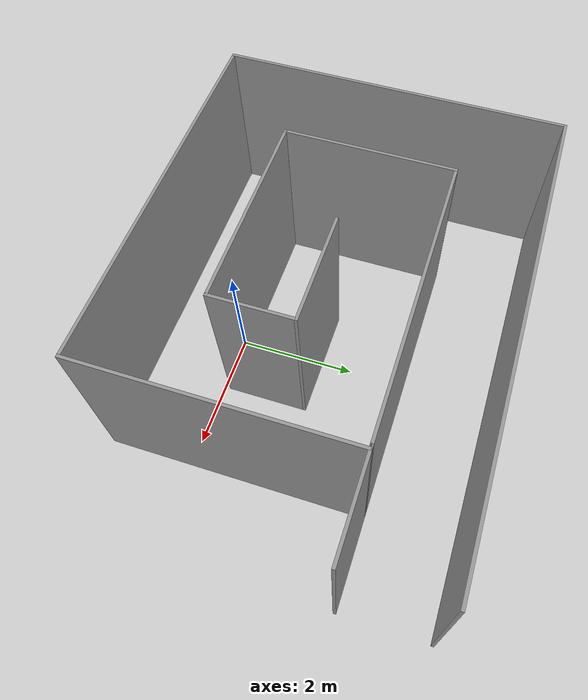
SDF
<?xml version='1.0'?>
<sdf version='1.7'>
  <model name='Path1'>
    <pose>0 0 0 0 -0 0</pose>
    <link name='Wall_43'>
      <collision name='Wall_43_Collision'>
        <geometry>
          <box>
            <size>7.88277 0.05 3</size>
          </box>
        </geometry>
        <pose>0 0 1.5 0 -0 0</pose>
      </collision>
      <visual name='Wall_43_Visual'>
        <pose>0 0 1.5 0 -0 0</pose>
        <geometry>
          <box>
            <size>7.88277 0.05 3</size>
          </box>
        </geometry>
        <material>
          <script>
            <uri>file://media/materials/scripts/gazebo.material</uri>
            <name>Gazebo/Grey</name>
          </script>
          <ambient>1 1 1 1</ambient>
        </material>
        <meta>
          <layer>0</layer>
        </meta>
      </visual>
      <pose>5.8e-05 4.45295 0 0 -0 3.14159</pose>
    </link>
    <link name='Wall_44'>
      <collision name='Wall_44_Collision'>
        <geometry>
          <box>
            <size>5.90019 0.05 3</size>
          </box>
        </geometry>
        <pose>0 0 1.5 0 -0 0</pose>
      </collision>
      <visual name='Wall_44_Visual'>
        <pose>0 0 1.5 0 -0 0</pose>
        <geometry>
          <box>
            <size>5.90019 0.05 3</size>
          </box>
        </geometry>
        <material>
          <script>
            <uri>file://media/materials/scripts/gazebo.material</uri>
            <name>Gazebo/Grey</name>
          </script>
          <ambient>1 1 1 1</ambient>
        </material>
        <meta>
          <layer>0</layer>
        </meta>
      </visual>
      <pose>-3.91644 1.52795 0 0 -0 -1.5708</pose>
    </link>
    <link name='Wall_45'>
      <collision name='Wall_45_Collision'>
        <geometry>
          <box>
            <size>6.383 0.05 3</size>
          </box>
        </geometry>
        <pose>0 0 1.5 0 -0 0</pose>
      </collision>
      <visual name='Wall_45_Visual'>
        <pose>0 0 1.5 0 -0 0</pose>
        <geometry>
          <box>
            <size>6.383 0.05 3</size>
          </box>
        </geometry>
        <material>
          <script>
            <uri>file://media/materials/scripts/gazebo.material</uri>
            <name>Gazebo/Grey</name>
          </script>
          <ambient>1 1 1 1</ambient>
        </material>
        <meta>
          <layer>0</layer>
        </meta>
      </visual>
      <pose>-0.749942 -1.39705 0 0 -0 0</pose>
    </link>
    <link name='Wall_46'>
      <collision name='Wall_46_Collision'>
        <geometry>
          <box>
            <size>4.4 0.05 3</size>
          </box>
        </geometry>
        <pose>0 0 1.5 0 -0 0</pose>
      </collision>
      <visual name='Wall_46_Visual'>
        <pose>0 0 1.5 0 -0 0</pose>
        <geometry>
          <box>
            <size>4.4 0.05 3</size>
          </box>
        </geometry>
        <material>
          <script>
            <uri>file://media/materials/scripts/gazebo.material</uri>
            <name>Gazebo/Grey</name>
          </script>
          <ambient>1 1 1 1</ambient>
        </material>
        <meta>
          <layer>0</layer>
        </meta>
      </visual>
      <pose>2.41656 0.777952 0 0 -0 1.5708</pose>
    </link>
    <link name='Wall_47'>
      <collision name='Wall_47_Collision'>
        <geometry>
          <box>
            <size>4.90034 0.05 3</size>
          </box>
        </geometry>
        <pose>0 0 1.5 0 -0 0</pose>
      </collision>
      <visual name='Wall_47_Visual'>
        <pose>0 0 1.5 0 -0 0</pose>
        <geometry>
          <box>
            <size>4.90034 0.05 3</size>
          </box>
        </geometry>
        <material>
          <script>
            <uri>file://media/materials/scripts/gazebo.material</uri>
            <name>Gazebo/Grey</name>
          </script>
          <ambient>1 1 1 1</ambient>
        </material>
        <meta>
          <layer>0</layer>
        </meta>
      </visual>
      <pose>-0.008442 2.95295 0 0 -0 3.14159</pose>
    </link>
    <link name='Wall_48'>
      <collision name='Wall_48_Collision'>
        <geometry>
          <box>
            <size>2.90019 0.05 3</size>
          </box>
        </geometry>
        <pose>0 0 1.5 0 -0 0</pose>
      </collision>
      <visual name='Wall_48_Visual'>
        <pose>0 0 1.5 0 -0 0</pose>
        <geometry>
          <box>
            <size>2.90019 0.05 3</size>
          </box>
        </geometry>
        <material>
          <script>
            <uri>file://media/materials/scripts/gazebo.material</uri>
            <name>Gazebo/Grey</name>
          </script>
          <ambient>1 1 1 1</ambient>
        </material>
        <meta>
          <layer>0</layer>
        </meta>
      </visual>
      <pose>-2.43344 1.52795 0 0 -0 -1.5708</pose>
    </link>
    <link name='Wall_49'>
      <collision name='Wall_49_Collision'>
        <geometry>
          <box>
            <size>3.4 0.05 3</size>
          </box>
        </geometry>
        <pose>0 0 1.5 0 -0 0</pose>
      </collision>
      <visual name='Wall_49_Visual'>
        <pose>0 0 1.5 0 -0 0</pose>
        <geometry>
          <box>
            <size>3.4 0.05 3</size>
          </box>
        </geometry>
        <material>
          <script>
            <uri>file://media/materials/scripts/gazebo.material</uri>
            <name>Gazebo/Grey</name>
          </script>
          <ambient>1 1 1 1</ambient>
        </material>
        <meta>
          <layer>0</layer>
        </meta>
      </visual>
      <pose>-0.758442 0.102952 0 0 -0 0</pose>
    </link>
    <link name='Wall_50'>
      <collision name='Wall_50_Collision'>
        <geometry>
          <box>
            <size>1.39981 0.05 3</size>
          </box>
        </geometry>
        <pose>0 0 1.5 0 -0 0</pose>
      </collision>
      <visual name='Wall_50_Visual'>
        <pose>0 0 1.5 0 -0 0</pose>
        <geometry>
          <box>
            <size>1.39981 0.05 3</size>
          </box>
        </geometry>
        <material>
          <script>
            <uri>file://media/materials/scripts/gazebo.material</uri>
            <name>Gazebo/Grey</name>
          </script>
          <ambient>1 1 1 1</ambient>
        </material>
        <meta>
          <layer>0</layer>
        </meta>
      </visual>
      <pose>0.916558 0.777952 0 0 -0 1.5708</pose>
    </link>
    <link name='Wall_51'>
      <collision name='Wall_51_Collision'>
        <geometry>
          <box>
            <size>1.90034 0.05 3</size>
          </box>
        </geometry>
        <pose>0 0 1.5 0 -0 0</pose>
      </collision>
      <visual name='Wall_51_Visual'>
        <pose>0 0 1.5 0 -0 0</pose>
        <geometry>
          <box>
            <size>1.90034 0.05 3</size>
          </box>
        </geometry>
        <material>
          <script>
            <uri>file://media/materials/scripts/gazebo.material</uri>
            <name>Gazebo/Grey</name>
          </script>
          <ambient>1 1 1 1</ambient>
        </material>
        <meta>
          <layer>0</layer>
        </meta>
      </visual>
      <pose>-0.008442 1.45295 0 0 -0 3.14159</pose>
    </link>
    <link name='Wall_53'>
      <collision name='Wall_53_Collision'>
        <geometry>
          <box>
            <size>1.6 0.05 3</size>
          </box>
        </geometry>
        <pose>0 0 1.5 0 -0 0</pose>
      </collision>
      <visual name='Wall_53_Visual'>
        <pose>0 0 1.5 0 -0 0</pose>
        <geometry>
          <box>
            <size>1.6 0.05 3</size>
          </box>
        </geometry>
        <material>
          <script>
            <uri>file://media/materials/scripts/gazebo.material</uri>
            <name>Gazebo/Grey</name>
          </script>
          <ambient>1 1 1 1</ambient>
        </material>
        <meta>
          <layer>0</layer>
        </meta>
      </visual>
      <pose>3.14156 2.95295 0 0 -0 0</pose>
    </link>
    <static>1</static>
  </model>
</sdf>
